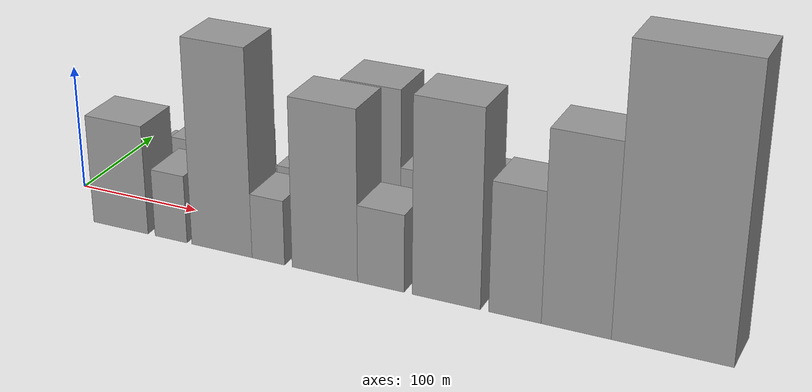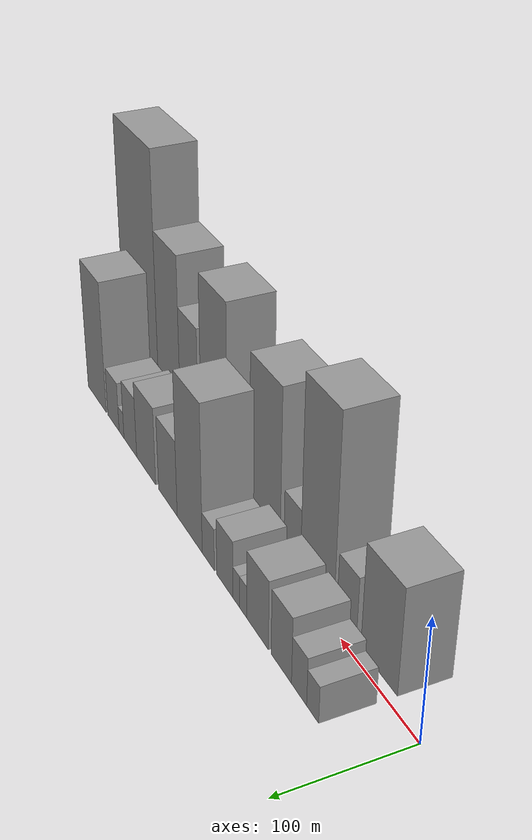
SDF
<sdf version="1.6">
 <world name="default">
  <scene>
   <sky><clouds><speed>12</speed></clouds></sky>
   <ambient>0.4 0.4 0.4 1</ambient>
   <background>0.7 0.7 0.7 1</background>
   <shadows>1</shadows>
  </scene>
  <gravity>0 0 -9.8066</gravity>
  <magnetic_field>6e-06 2.3e-05 -4.2e-05</magnetic_field>
  <physics default="0" name="default_physics" type="ode">
   <ode>
    <solver>
     <type>quick</type>
     <iters>10</iters>
     <sor>1.0</sor>
     <use_dynamic_moi_rescaling>0</use_dynamic_moi_rescaling>
    </solver>
    <constraints>
     <cfm>0</cfm>
     <erp>0.2</erp>
     <contact_max_correcting_vel>100</contact_max_correcting_vel>
     <contact_surface_layer>0.001</contact_surface_layer>
    </constraints>
   </ode>
   <max_step_size>0.004</max_step_size>
   <real_time_factor>1</real_time_factor>
   <real_time_update_rate>250</real_time_update_rate>
  </physics>
  <light name="sun" type="directional">
   <pose>0 0 10 0 0 0</pose>
   <diffuse>0.8 0.8 0.8 1</diffuse>
   <specular>0.2 0.2 0.2 1</specular>
   <attenuation>
    <range>1000</range>
    <constant>0.9</constant>
    <linear>0.01</linear>
    <quadratic>0.001</quadratic>
   </attenuation>
   <direction>-0.5 0.1 -0.9</direction>
  </light>
  <model name="building_1">
   <static>1</static>
   <pose>48.1230 27.5000 0 0.000000 0.000000 1.570796</pose>
   <link name="link">
    <pose>0 0 15.00 0 0 0</pose>
    <collision name="collision"><geometry><box><size>40.0000 16.2461 30.0000</size></box></geometry></collision>
    <visual name="visual">
     <cast_shadows>0</cast_shadows>
     <geometry><box><size>40.0000 16.2461 30.0000</size></box></geometry>
     <material>
      <script>
       <uri>model://grey_wall/materials/scripts</uri>
       <uri>model://grey_wall/materials/textures</uri>
       <name>vrc/grey_wall</name>
      </script>
     </material>
    </visual>
   </link>
  </model>
  <model name="building_2">
   <static>1</static>
   <pose>66.7685 27.5000 0 0.000000 0.000000 1.570796</pose>
   <link name="link">
    <pose>0 0 19.50 0 0 0</pose>
    <collision name="collision"><geometry><box><size>40.0000 21.0449 39.0000</size></box></geometry></collision>
    <visual name="visual">
     <cast_shadows>0</cast_shadows>
     <geometry><box><size>40.0000 21.0449 39.0000</size></box></geometry>
     <material>
      <script>
       <uri>model://grey_wall/materials/scripts</uri>
       <uri>model://grey_wall/materials/textures</uri>
       <name>vrc/grey_wall</name>
      </script>
     </material>
    </visual>
   </link>
  </model>
  <model name="building_3">
   <static>1</static>
   <pose>92.1436 27.5000 0 0.000000 0.000000 1.570796</pose>
   <link name="link">
    <pose>0 0 27.00 0 0 0</pose>
    <collision name="collision"><geometry><box><size>40.0000 29.7053 54.0000</size></box></geometry></collision>
    <visual name="visual">
     <cast_shadows>0</cast_shadows>
     <geometry><box><size>40.0000 29.7053 54.0000</size></box></geometry>
     <material>
      <script>
       <uri>model://grey_wall/materials/scripts</uri>
       <uri>model://grey_wall/materials/textures</uri>
       <name>vrc/grey_wall</name>
      </script>
     </material>
    </visual>
   </link>
  </model>
  <model name="building_4">
   <static>1</static>
   <pose>127.8787 27.5000 0 0.000000 0.000000 1.570796</pose>
   <link name="link">
    <pose>0 0 28.50 0 0 0</pose>
    <collision name="collision"><geometry><box><size>40.0000 33.7649 57.0000</size></box></geometry></collision>
    <visual name="visual">
     <cast_shadows>0</cast_shadows>
     <geometry><box><size>40.0000 33.7649 57.0000</size></box></geometry>
     <material>
      <script>
       <uri>model://grey_wall/materials/scripts</uri>
       <uri>model://grey_wall/materials/textures</uri>
       <name>vrc/grey_wall</name>
      </script>
     </material>
    </visual>
   </link>
  </model>
  <model name="building_5">
   <static>1</static>
   <pose>150.4515 27.5000 0 0.000000 0.000000 1.570796</pose>
   <link name="link">
    <pose>0 0 13.50 0 0 0</pose>
    <collision name="collision"><geometry><box><size>40.0000 11.3807 27.0000</size></box></geometry></collision>
    <visual name="visual">
     <cast_shadows>0</cast_shadows>
     <geometry><box><size>40.0000 11.3807 27.0000</size></box></geometry>
     <material>
      <script>
       <uri>model://grey_wall/materials/scripts</uri>
       <uri>model://grey_wall/materials/textures</uri>
       <name>vrc/grey_wall</name>
      </script>
     </material>
    </visual>
   </link>
  </model>
  <model name="building_6">
   <static>1</static>
   <pose>161.6430 27.5000 0 0.000000 0.000000 1.570796</pose>
   <link name="link">
    <pose>0 0 13.50 0 0 0</pose>
    <collision name="collision"><geometry><box><size>40.0000 11.0025 27.0000</size></box></geometry></collision>
    <visual name="visual">
     <cast_shadows>0</cast_shadows>
     <geometry><box><size>40.0000 11.0025 27.0000</size></box></geometry>
     <material>
      <script>
       <uri>model://grey_wall/materials/scripts</uri>
       <uri>model://grey_wall/materials/textures</uri>
       <name>vrc/grey_wall</name>
      </script>
     </material>
    </visual>
   </link>
  </model>
  <model name="building_7">
   <static>1</static>
   <pose>180.7986 27.5000 0 0.000000 0.000000 1.570796</pose>
   <link name="link">
    <pose>0 0 24.00 0 0 0</pose>
    <collision name="collision"><geometry><box><size>40.0000 27.3086 48.0000</size></box></geometry></collision>
    <visual name="visual">
     <cast_shadows>0</cast_shadows>
     <geometry><box><size>40.0000 27.3086 48.0000</size></box></geometry>
     <material>
      <script>
       <uri>model://grey_wall/materials/scripts</uri>
       <uri>model://grey_wall/materials/textures</uri>
       <name>vrc/grey_wall</name>
      </script>
     </material>
    </visual>
   </link>
  </model>
  <model name="building_8">
   <static>1</static>
   <pose>209.1829 27.5000 0 0.000000 0.000000 1.570796</pose>
   <link name="link">
    <pose>0 0 18.00 0 0 0</pose>
    <collision name="collision"><geometry><box><size>40.0000 21.4602 36.0000</size></box></geometry></collision>
    <visual name="visual">
     <cast_shadows>0</cast_shadows>
     <geometry><box><size>40.0000 21.4602 36.0000</size></box></geometry>
     <material>
      <script>
       <uri>model://grey_wall/materials/scripts</uri>
       <uri>model://grey_wall/materials/textures</uri>
       <name>vrc/grey_wall</name>
      </script>
     </material>
    </visual>
   </link>
  </model>
  <model name="building_9">
   <static>1</static>
   <pose>243.4111 27.5000 0 0.000000 0.000000 1.570796</pose>
   <link name="link">
    <pose>0 0 63.00 0 0 0</pose>
    <collision name="collision"><geometry><box><size>40.0000 46.9962 126.0000</size></box></geometry></collision>
    <visual name="visual">
     <cast_shadows>0</cast_shadows>
     <geometry><box><size>40.0000 46.9962 126.0000</size></box></geometry>
     <material>
      <script>
       <uri>model://grey_wall/materials/scripts</uri>
       <uri>model://grey_wall/materials/textures</uri>
       <name>vrc/grey_wall</name>
      </script>
     </material>
    </visual>
   </link>
  </model>
  <model name="building_10">
   <static>1</static>
   <pose>285.4560 27.5000 0 0.000000 0.000000 1.570796</pose>
   <link name="link">
    <pose>0 0 33.00 0 0 0</pose>
    <collision name="collision"><geometry><box><size>40.0000 37.0935 66.0000</size></box></geometry></collision>
    <visual name="visual">
     <cast_shadows>0</cast_shadows>
     <geometry><box><size>40.0000 37.0935 66.0000</size></box></geometry>
     <material>
      <script>
       <uri>model://grey_wall/materials/scripts</uri>
       <uri>model://grey_wall/materials/textures</uri>
       <name>vrc/grey_wall</name>
      </script>
     </material>
    </visual>
   </link>
  </model>
  <model name="building_11">
   <static>1</static>
   <pose>330.2611 27.5000 0 0.000000 0.000000 1.570796</pose>
   <link name="link">
    <pose>0 0 34.50 0 0 0</pose>
    <collision name="collision"><geometry><box><size>40.0000 40.5168 69.0000</size></box></geometry></collision>
    <visual name="visual">
     <cast_shadows>0</cast_shadows>
     <geometry><box><size>40.0000 40.5168 69.0000</size></box></geometry>
     <material>
      <script>
       <uri>model://grey_wall/materials/scripts</uri>
       <uri>model://grey_wall/materials/textures</uri>
       <name>vrc/grey_wall</name>
      </script>
     </material>
    </visual>
   </link>
  </model>
  <model name="building_12">
   <static>1</static>
   <pose>364.8312 27.5000 0 0.000000 0.000000 1.570796</pose>
   <link name="link">
    <pose>0 0 27.00 0 0 0</pose>
    <collision name="collision"><geometry><box><size>40.0000 28.6233 54.0000</size></box></geometry></collision>
    <visual name="visual">
     <cast_shadows>0</cast_shadows>
     <geometry><box><size>40.0000 28.6233 54.0000</size></box></geometry>
     <material>
      <script>
       <uri>model://grey_wall/materials/scripts</uri>
       <uri>model://grey_wall/materials/textures</uri>
       <name>vrc/grey_wall</name>
      </script>
     </material>
    </visual>
   </link>
  </model>
  <model name="building_13">
   <static>1</static>
   <pose>384.7913 27.5000 0 0.000000 0.000000 1.570796</pose>
   <link name="link">
    <pose>0 0 12.00 0 0 0</pose>
    <collision name="collision"><geometry><box><size>40.0000 11.2968 24.0000</size></box></geometry></collision>
    <visual name="visual">
     <cast_shadows>0</cast_shadows>
     <geometry><box><size>40.0000 11.2968 24.0000</size></box></geometry>
     <material>
      <script>
       <uri>model://grey_wall/materials/scripts</uri>
       <uri>model://grey_wall/materials/textures</uri>
       <name>vrc/grey_wall</name>
      </script>
     </material>
    </visual>
   </link>
  </model>
  <model name="building_14">
   <static>1</static>
   <pose>403.7771 27.5000 0 0.000000 0.000000 1.570796</pose>
   <link name="link">
    <pose>0 0 22.50 0 0 0</pose>
    <collision name="collision"><geometry><box><size>40.0000 26.6747 45.0000</size></box></geometry></collision>
    <visual name="visual">
     <cast_shadows>0</cast_shadows>
     <geometry><box><size>40.0000 26.6747 45.0000</size></box></geometry>
     <material>
      <script>
       <uri>model://grey_wall/materials/scripts</uri>
       <uri>model://grey_wall/materials/textures</uri>
       <name>vrc/grey_wall</name>
      </script>
     </material>
    </visual>
   </link>
  </model>
  <model name="building_15">
   <static>1</static>
   <pose>443.5367 27.5000 0 0.000000 0.000000 1.570796</pose>
   <link name="link">
    <pose>0 0 60.00 0 0 0</pose>
    <collision name="collision"><geometry><box><size>40.0000 44.8445 120.0000</size></box></geometry></collision>
    <visual name="visual">
     <cast_shadows>0</cast_shadows>
     <geometry><box><size>40.0000 44.8445 120.0000</size></box></geometry>
     <material>
      <script>
       <uri>model://grey_wall/materials/scripts</uri>
       <uri>model://grey_wall/materials/textures</uri>
       <name>vrc/grey_wall</name>
      </script>
     </material>
    </visual>
   </link>
  </model>
  <model name="building_16">
   <static>1</static>
   <pose>63.6763 -27.5000 0 0.000000 0.000000 1.570796</pose>
   <link name="link">
    <pose>0 0 43.50 0 0 0</pose>
    <collision name="collision"><geometry><box><size>40.0000 47.3526 87.0000</size></box></geometry></collision>
    <visual name="visual">
     <cast_shadows>0</cast_shadows>
     <geometry><box><size>40.0000 47.3526 87.0000</size></box></geometry>
     <material>
      <script>
       <uri>model://grey_wall/materials/scripts</uri>
       <uri>model://grey_wall/materials/textures</uri>
       <name>vrc/grey_wall</name>
      </script>
     </material>
    </visual>
   </link>
  </model>
  <model name="building_17">
   <static>1</static>
   <pose>106.9784 -27.5000 0 0.000000 0.000000 1.570796</pose>
   <link name="link">
    <pose>0 0 27.00 0 0 0</pose>
    <collision name="collision"><geometry><box><size>40.0000 27.2516 54.0000</size></box></geometry></collision>
    <visual name="visual">
     <cast_shadows>0</cast_shadows>
     <geometry><box><size>40.0000 27.2516 54.0000</size></box></geometry>
     <material>
      <script>
       <uri>model://grey_wall/materials/scripts</uri>
       <uri>model://grey_wall/materials/textures</uri>
       <name>vrc/grey_wall</name>
      </script>
     </material>
    </visual>
   </link>
  </model>
  <model name="building_18">
   <static>1</static>
   <pose>149.5764 -27.5000 0 0.000000 0.000000 1.570796</pose>
   <link name="link">
    <pose>0 0 81.00 0 0 0</pose>
    <collision name="collision"><geometry><box><size>40.0000 49.9445 162.0000</size></box></geometry></collision>
    <visual name="visual">
     <cast_shadows>0</cast_shadows>
     <geometry><box><size>40.0000 49.9445 162.0000</size></box></geometry>
     <material>
      <script>
       <uri>model://grey_wall/materials/scripts</uri>
       <uri>model://grey_wall/materials/textures</uri>
       <name>vrc/grey_wall</name>
      </script>
     </material>
    </visual>
   </link>
  </model>
  <model name="building_19">
   <static>1</static>
   <pose>187.7367 -27.5000 0 0.000000 0.000000 1.570796</pose>
   <link name="link">
    <pose>0 0 25.50 0 0 0</pose>
    <collision name="collision"><geometry><box><size>40.0000 26.3761 51.0000</size></box></geometry></collision>
    <visual name="visual">
     <cast_shadows>0</cast_shadows>
     <geometry><box><size>40.0000 26.3761 51.0000</size></box></geometry>
     <material>
      <script>
       <uri>model://grey_wall/materials/scripts</uri>
       <uri>model://grey_wall/materials/textures</uri>
       <name>vrc/grey_wall</name>
      </script>
     </material>
    </visual>
   </link>
  </model>
  <model name="building_20">
   <static>1</static>
   <pose>232.6695 -27.5000 0 0.000000 0.000000 1.570796</pose>
   <link name="link">
    <pose>0 0 66.00 0 0 0</pose>
    <collision name="collision"><geometry><box><size>40.0000 51.4894 132.0000</size></box></geometry></collision>
    <visual name="visual">
     <cast_shadows>0</cast_shadows>
     <geometry><box><size>40.0000 51.4894 132.0000</size></box></geometry>
     <material>
      <script>
       <uri>model://grey_wall/materials/scripts</uri>
       <uri>model://grey_wall/materials/textures</uri>
       <name>vrc/grey_wall</name>
      </script>
     </material>
    </visual>
   </link>
  </model>
  <model name="building_21">
   <static>1</static>
   <pose>276.2769 -27.5000 0 0.000000 0.000000 1.570796</pose>
   <link name="link">
    <pose>0 0 30.00 0 0 0</pose>
    <collision name="collision"><geometry><box><size>40.0000 35.7254 60.0000</size></box></geometry></collision>
    <visual name="visual">
     <cast_shadows>0</cast_shadows>
     <geometry><box><size>40.0000 35.7254 60.0000</size></box></geometry>
     <material>
      <script>
       <uri>model://grey_wall/materials/scripts</uri>
       <uri>model://grey_wall/materials/textures</uri>
       <name>vrc/grey_wall</name>
      </script>
     </material>
    </visual>
   </link>
  </model>
  <model name="building_22">
   <static>1</static>
   <pose>325.4637 -27.5000 0 0.000000 0.000000 1.570796</pose>
   <link name="link">
    <pose>0 0 75.00 0 0 0</pose>
    <collision name="collision"><geometry><box><size>40.0000 50.6482 150.0000</size></box></geometry></collision>
    <visual name="visual">
     <cast_shadows>0</cast_shadows>
     <geometry><box><size>40.0000 50.6482 150.0000</size></box></geometry>
     <material>
      <script>
       <uri>model://grey_wall/materials/scripts</uri>
       <uri>model://grey_wall/materials/textures</uri>
       <name>vrc/grey_wall</name>
      </script>
     </material>
    </visual>
   </link>
  </model>
  <model name="building_23">
   <static>1</static>
   <pose>375.6747 -27.5000 0 0.000000 0.000000 1.570796</pose>
   <link name="link">
    <pose>0 0 49.50 0 0 0</pose>
    <collision name="collision"><geometry><box><size>40.0000 37.7737 99.0000</size></box></geometry></collision>
    <visual name="visual">
     <cast_shadows>0</cast_shadows>
     <geometry><box><size>40.0000 37.7737 99.0000</size></box></geometry>
     <material>
      <script>
       <uri>model://grey_wall/materials/scripts</uri>
       <uri>model://grey_wall/materials/textures</uri>
       <name>vrc/grey_wall</name>
      </script>
     </material>
    </visual>
   </link>
  </model>
  <model name="building_24">
   <static>1</static>
   <pose>418.9986 -27.5000 0 0.000000 0.000000 1.570796</pose>
   <link name="link">
    <pose>0 0 72.00 0 0 0</pose>
    <collision name="collision"><geometry><box><size>40.0000 48.8742 144.0000</size></box></geometry></collision>
    <visual name="visual">
     <cast_shadows>0</cast_shadows>
     <geometry><box><size>40.0000 48.8742 144.0000</size></box></geometry>
     <material>
      <script>
       <uri>model://grey_wall/materials/scripts</uri>
       <uri>model://grey_wall/materials/textures</uri>
       <name>vrc/grey_wall</name>
      </script>
     </material>
    </visual>
   </link>
  </model>
  <model name="building_25">
   <static>1</static>
   <pose>484.5175 -27.5000 0 0.000000 0.000000 1.570796</pose>
   <link name="link">
    <pose>0 0 106.50 0 0 0</pose>
    <collision name="collision"><geometry><box><size>40.0000 82.1636 213.0000</size></box></geometry></collision>
    <visual name="visual">
     <cast_shadows>0</cast_shadows>
     <geometry><box><size>40.0000 82.1636 213.0000</size></box></geometry>
     <material>
      <script>
       <uri>model://grey_wall/materials/scripts</uri>
       <uri>model://grey_wall/materials/textures</uri>
       <name>vrc/grey_wall</name>
      </script>
     </material>
    </visual>
   </link>
  </model>
 </world>
</sdf>
